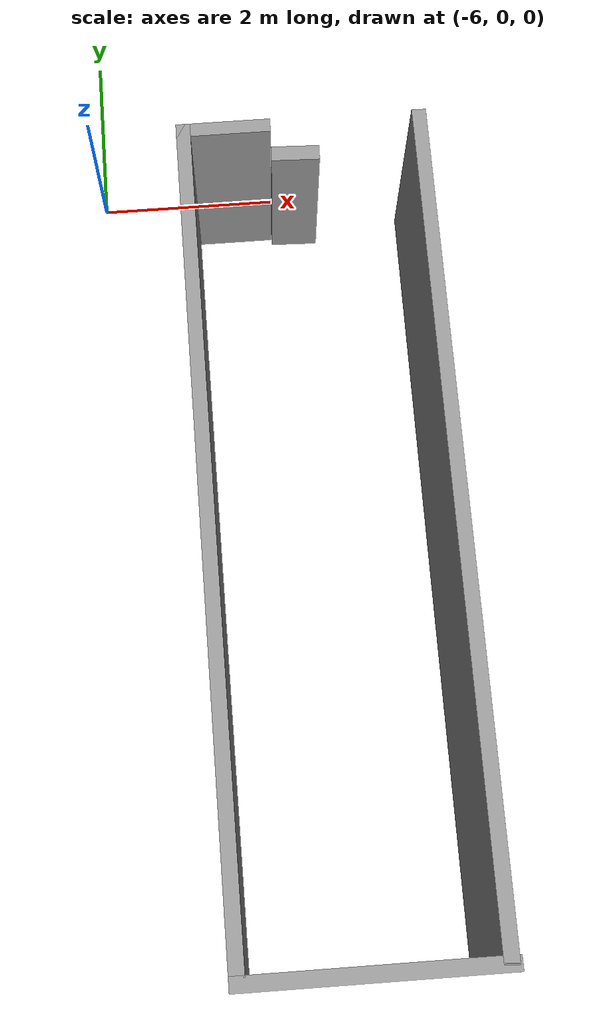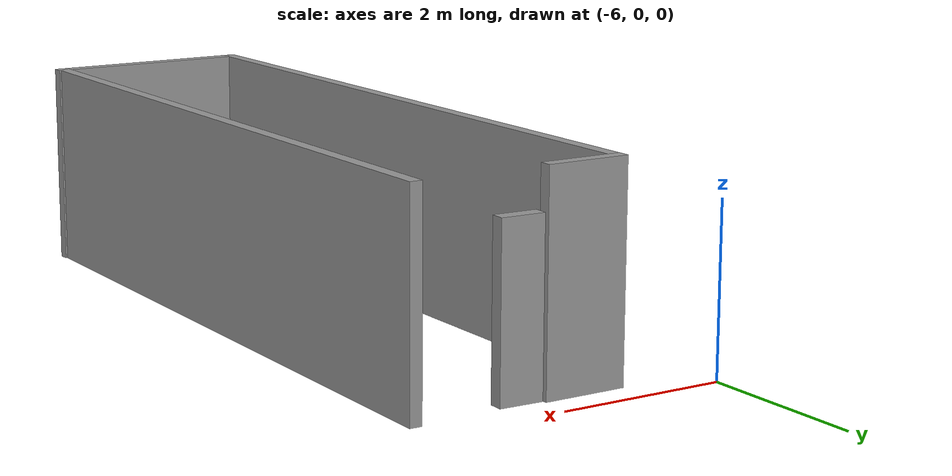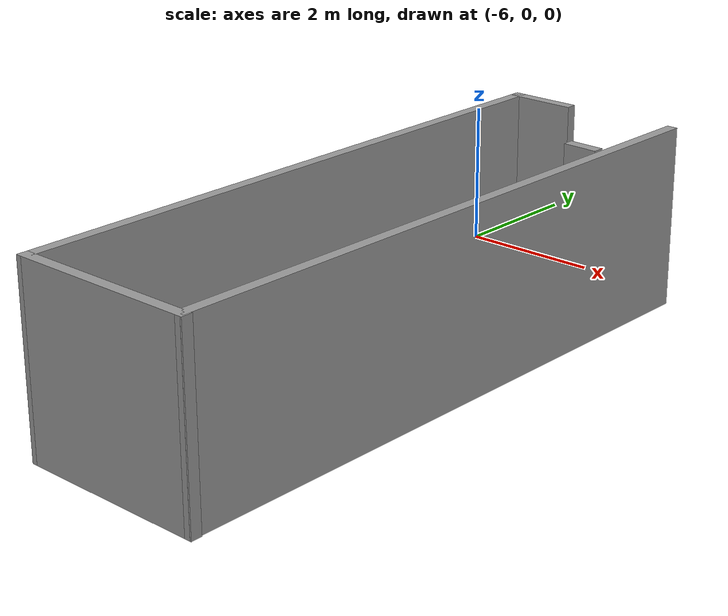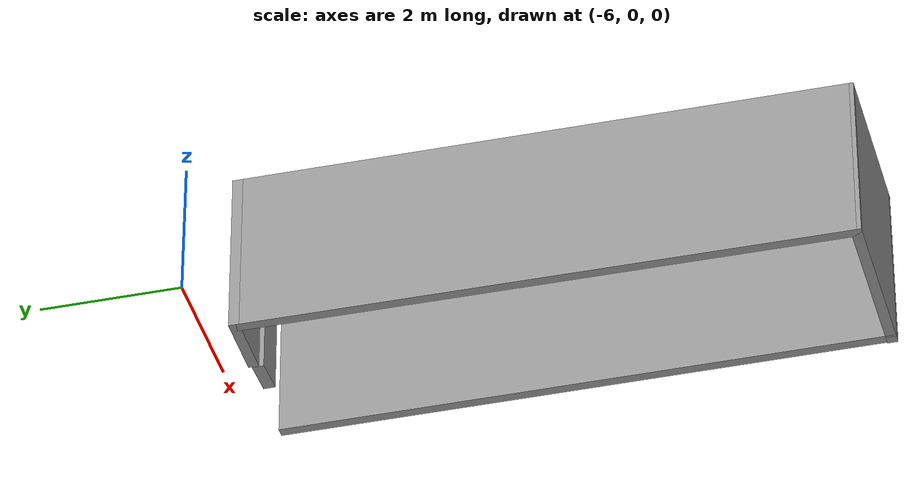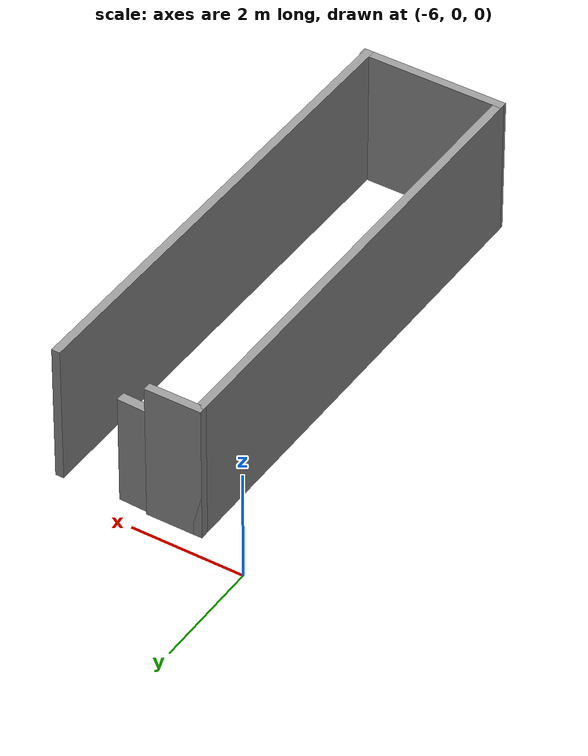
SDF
<?xml version='1.0'?>
<sdf version='1.6'>
  <model name='GazeboKorytarz'>
    <pose frame=''>-2.51403 -4.55881 0 0 -0 0</pose>
    <link name='Door_0'>
      <collision name='Door_0_Collision'>
        <geometry>
          <box>
            <size>0.525 0.17 2</size>
          </box>
        </geometry>
        <pose frame=''>0 0 1 0 -0 0</pose>
      </collision>
      <visual name='Door_0_Visual'>
        <pose frame=''>0 0 1 0 -0 0</pose>
        <geometry>
          <box>
            <size>0.525 0.17 2</size>
          </box>
        </geometry>
        <material>
          <script>
            <uri>file://media/materials/scripts/gazebo.material</uri>
            <name>Gazebo/Grey</name>
          </script>
        </material>
      </visual>
      <pose frame=''>-1.24622 4.05485 0 0 -0 3.10653</pose>
    </link>
    <link name='Wall_30'>
      <collision name='Wall_30_Collision'>
        <geometry>
          <box>
            <size>8.75 0.15 2.5</size>
          </box>
        </geometry>
        <pose frame=''>0 0 1.25 0 -0 0</pose>
      </collision>
      <visual name='Wall_30_Visual'>
        <pose frame=''>0 0 1.25 0 -0 0</pose>
        <geometry>
          <box>
            <size>8.75 0.15 2.5</size>
          </box>
        </geometry>
        <material>
          <script>
            <uri>file://media/materials/scripts/gazebo.material</uri>
            <name>Gazebo/Grey</name>
          </script>
          <ambient>1 1 1 1</ambient>
        </material>
        <meta>
          <layer>0</layer>
        </meta>
      </visual>
      <pose frame=''>-2.4389 -0.178844 0 0 -0 -1.5708</pose>
    </link>
    <link name='Wall_32'>
      <collision name='Wall_32_Collision'>
        <geometry>
          <box>
            <size>2.61292 0.15 2.5</size>
          </box>
        </geometry>
        <pose frame=''>0 0 1.25 0 -0 0</pose>
      </collision>
      <visual name='Wall_32_Visual'>
        <pose frame=''>0 0 1.25 0 -0 0</pose>
        <geometry>
          <box>
            <size>2.61292 0.15 2.5</size>
          </box>
        </geometry>
        <material>
          <script>
            <uri>file://media/materials/scripts/gazebo.material</uri>
            <name>Gazebo/Grey</name>
          </script>
          <ambient>1 1 1 1</ambient>
        </material>
        <meta>
          <layer>0</layer>
        </meta>
      </visual>
      <pose frame=''>-1.20744 -4.48103 0 0 -0 -0.001775</pose>
    </link>
    <link name='Wall_33'>
      <collision name='Wall_33_Collision'>
        <geometry>
          <box>
            <size>8.75 0.15 2.5</size>
          </box>
        </geometry>
        <pose frame=''>0 0 1.25 0 -0 0</pose>
      </collision>
      <visual name='Wall_33_Visual'>
        <pose frame=''>0 0 1.25 0 -0 0</pose>
        <geometry>
          <box>
            <size>8.75 0.15 2.5</size>
          </box>
        </geometry>
        <material>
          <script>
            <uri>file://media/materials/scripts/gazebo.material</uri>
            <name>Gazebo/Grey</name>
          </script>
          <ambient>1 1 1 1</ambient>
        </material>
        <meta>
          <layer>0</layer>
        </meta>
      </visual>
      <pose frame=''>0.038176 -0.183353 0 0 -0 1.56283</pose>
    </link>
    <link name='Wall_38'>
      <collision name='Wall_38_Collision'>
        <geometry>
          <box>
            <size>1 0.15 2.5</size>
          </box>
        </geometry>
        <pose frame=''>0 0 1.25 0 -0 0</pose>
      </collision>
      <visual name='Wall_38_Visual'>
        <pose frame=''>0 0 1.25 0 -0 0</pose>
        <geometry>
          <box>
            <size>1 0.15 2.5</size>
          </box>
        </geometry>
        <material>
          <script>
            <uri>file://media/materials/scripts/gazebo.material</uri>
            <name>Gazebo/Grey</name>
          </script>
          <ambient>1 1 1 1</ambient>
        </material>
        <meta>
          <layer>0</layer>
        </meta>
      </visual>
      <pose frame=''>-2.0139 4.12116 0 0 -0 0</pose>
    </link>
    <static>1</static>
  </model>
</sdf>
